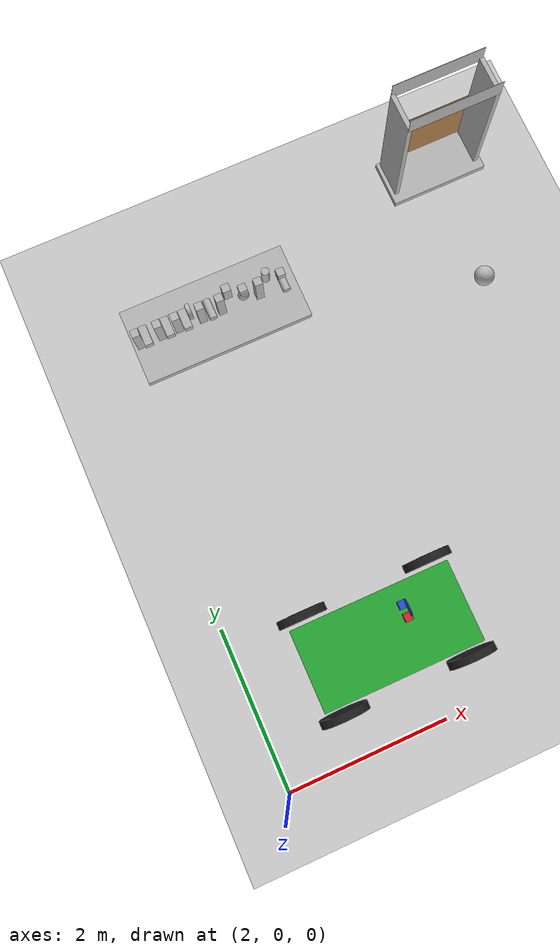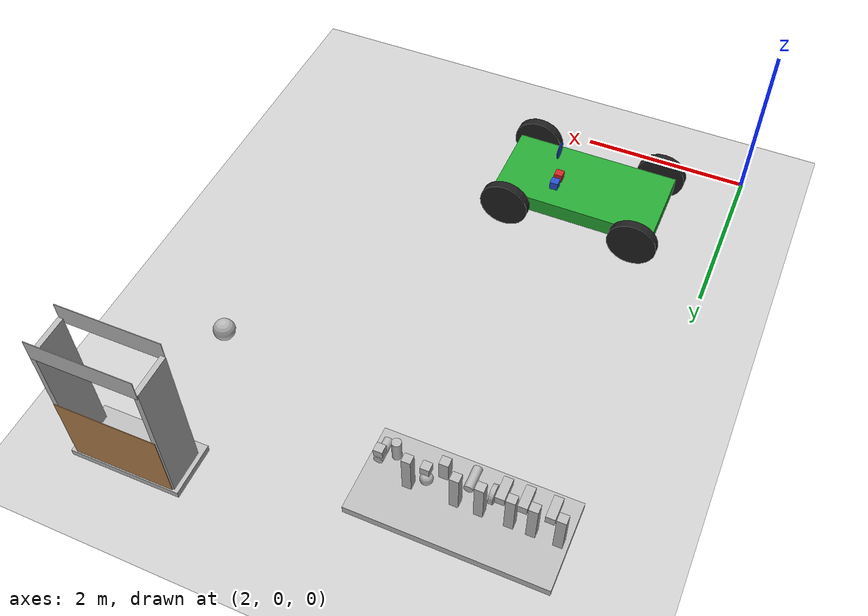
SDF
<sdf version="1.6">
 <world name="default">
  <model name="ground_plane">
   <static>1</static>
   <link name="link">
    <collision name="collision">
     <geometry><plane><normal>0 0 1</normal><size>100 100</size></plane></geometry>
     <surface>
      <contact><collide_bitmask>65535</collide_bitmask></contact>
      <friction><ode><mu>100</mu><mu2>50</mu2></ode></friction>
     </surface>
    </collision>
    <visual name="visual">
     <cast_shadows>0</cast_shadows>
     <geometry><plane><normal>0 0 1</normal><size>100 100</size></plane></geometry>
     <material>
      <script><uri>file://media/materials/scripts/gazebo.material</uri><name>Gazebo/Grey</name></script>
     </material>
    </visual>
   </link>
  </model>
  <model name="demo_joint_types">
   <link name="heavy_base">
    <pose>0 0 0.05 0 -0 0</pose>
    <inertial>
     <mass>100</mass>
     <inertia><ixx>8.4167</ixx><ixy>0</ixy><ixz>0</ixz><iyy>40.417</iyy><iyz>0</iyz><izz>48.667</izz></inertia>
    </inertial>
    <collision name="heavy_base_collision"><geometry><box><size>2.2 1 0.1</size></box></geometry></collision>
    <visual name="heavy_base_visual">
     <geometry><box><size>2.2 1 0.1</size></box></geometry>
     <material>
      <script>
       <uri>model://demo_joint_types/materials/scripts</uri>
       <uri>model://demo_joint_types/materials/textures</uri>
       <name>demo_joint_types/legend</name>
      </script>
     </material>
    </visual>
   </link>
   <link name="revolute_base">
    <pose>-0.72 0 0.35 0 -0 0</pose>
    <inertial>
     <inertia>
      <ixx>0.021667</ixx>
      <ixy>0</ixy>
      <ixz>0</ixz>
      <iyy>0.021667</iyy>
      <iyz>0</iyz>
      <izz>0.0016667</izz>
     </inertia>
     <mass>1</mass>
    </inertial>
    <collision name="revolute_base_collision"><geometry><box><size>0.1 0.1 0.5</size></box></geometry></collision>
    <visual name="revolute_base_visual">
     <geometry><box><size>0.1 0.1 0.5</size></box></geometry>
     <material>
      <script>
       <uri>model://demo_joint_types/materials/scripts</uri>
       <uri>model://demo_joint_types/materials/textures</uri>
       <name>demo_joint_types/parent</name>
      </script>
     </material>
    </visual>
   </link>
   <joint name="revolute_base_to_heavy_base" type="fixed">
    <parent>heavy_base</parent>
    <child>revolute_base</child>
   </joint>
   <link name="revolute_arm">
    <pose>-0.61 -0.075 0.55 0 -0 0</pose>
    <inertial>
     <inertia>
      <ixx>0.0060417</ixx>
      <ixy>0</ixy>
      <ixz>0</ixz>
      <iyy>0.0016667</iyy>
      <iyz>0</iyz>
      <izz>0.0060417</izz>
     </inertia>
     <mass>1</mass>
    </inertial>
    <collision name="revolute_arm_collision"><geometry><box><size>0.1 0.25 0.1</size></box></geometry></collision>
    <visual name="revolute_arm_visual">
     <geometry><box><size>0.1 0.25 0.1</size></box></geometry>
     <material>
      <script>
       <uri>model://demo_joint_types/materials/scripts</uri>
       <uri>model://demo_joint_types/materials/textures</uri>
       <name>demo_joint_types/child</name>
      </script>
     </material>
    </visual>
   </link>
   <joint name="revolute_demo" type="revolute">
    <parent>revolute_base</parent>
    <child>revolute_arm</child>
    <axis>
     <xyz>1 0 0</xyz>
     <use_parent_model_frame>0</use_parent_model_frame>
     <limit><lower>-1e+16</lower><upper>1e+16</upper></limit>
     <dynamics><spring_reference>0</spring_reference><spring_stiffness>0</spring_stiffness></dynamics>
    </axis>
    <pose>0 0.075 0 0 -0 0</pose>
   </joint>
   <link name="gearbox_base">
    <pose>-0.49 0 0.35 0 -0 0</pose>
    <inertial>
     <inertia>
      <ixx>0.021667</ixx>
      <ixy>0</ixy>
      <ixz>0</ixz>
      <iyy>0.021667</iyy>
      <iyz>0</iyz>
      <izz>0.0016667</izz>
     </inertia>
     <mass>1</mass>
    </inertial>
    <collision name="gearbox_base_collision"><geometry><box><size>0.1 0.1 0.5</size></box></geometry></collision>
    <visual name="gearbox_base_visual">
     <geometry><box><size>0.1 0.1 0.5</size></box></geometry>
     <material>
      <script>
       <uri>model://demo_joint_types/materials/scripts</uri>
       <uri>model://demo_joint_types/materials/textures</uri>
       <name>demo_joint_types/reference</name>
      </script>
     </material>
    </visual>
   </link>
   <joint name="gearbox_base_to_heavy_base" type="fixed">
    <parent>heavy_base</parent>
    <child>gearbox_base</child>
   </joint>
   <link name="gearbox_input">
    <pose>-0.38 -0.075 0.55 0 -0 0</pose>
    <inertial>
     <inertia>
      <ixx>0.0060417</ixx>
      <ixy>0</ixy>
      <ixz>0</ixz>
      <iyy>0.0016667</iyy>
      <iyz>0</iyz>
      <izz>0.0060417</izz>
     </inertia>
     <mass>1</mass>
    </inertial>
    <collision name="gearbox_input_collision">
     <geometry><box><size>0.1 0.25 0.1</size></box></geometry>
    </collision>
    <visual name="gearbox_input_visual">
     <geometry><box><size>0.1 0.25 0.1</size></box></geometry>
     <material>
      <script>
       <uri>model://demo_joint_types/materials/scripts</uri>
       <uri>model://demo_joint_types/materials/textures</uri>
       <name>demo_joint_types/parent</name>
      </script>
     </material>
    </visual>
   </link>
   <link name="gearbox_output">
    <gravity>0</gravity>
    <pose>-0.3 0 0.55 3.14159 1.57079 3.14159</pose>
    <inertial>
     <mass>0.1</mass>
     <inertia>
      <ixx>0.00027083</ixx>
      <ixy>0</ixy>
      <ixz>0</ixz>
      <iyy>0.00027083</iyy>
      <iyz>0</iyz>
      <izz>0.0005</izz>
     </inertia>
    </inertial>
    <collision name="gearbox_output_collision">
     <geometry><cylinder><radius>0.1</radius><length>0.05</length></cylinder></geometry>
    </collision>
    <visual name="gearbox_output_visual">
     <geometry><cylinder><radius>0.1</radius><length>0.05</length></cylinder></geometry>
     <material>
      <script>
       <uri>model://demo_joint_types/materials/scripts</uri>
       <uri>model://demo_joint_types/materials/textures</uri>
       <name>demo_joint_types/child</name>
      </script>
     </material>
    </visual>
   </link>
   <joint name="gearbox_input_joint" type="revolute">
    <parent>gearbox_base</parent>
    <child>gearbox_input</child>
    <axis>
     <xyz>1 0 0</xyz>
     <use_parent_model_frame>0</use_parent_model_frame>
     <limit><lower>-1e+16</lower><upper>1e+16</upper></limit>
     <dynamics><spring_reference>0</spring_reference><spring_stiffness>0</spring_stiffness></dynamics>
    </axis>
    <pose>0 0.075 0 0 -0 0</pose>
   </joint>
   <joint name="gearbox_output_joint" type="revolute">
    <parent>gearbox_base</parent>
    <child>gearbox_output</child>
    <axis>
     <xyz>0 0 1</xyz>
     <use_parent_model_frame>0</use_parent_model_frame>
     <limit><lower>-1e+16</lower><upper>1e+16</upper></limit>
     <dynamics><spring_reference>0</spring_reference><spring_stiffness>0</spring_stiffness></dynamics>
    </axis>
   </joint>
   <joint name="gearbox_demo" type="gearbox">
    <parent>gearbox_input</parent>
    <child>gearbox_output</child>
    <gearbox_reference_body>gearbox_base</gearbox_reference_body>
    <gearbox_ratio>5</gearbox_ratio>
    <axis>
     <xyz>0 0 1</xyz>
     <use_parent_model_frame>0</use_parent_model_frame>
     <limit><lower>-1e+16</lower><upper>1e+16</upper></limit>
     <dynamics><spring_reference>0</spring_reference><spring_stiffness>0</spring_stiffness></dynamics>
    </axis>
    <axis2>
     <xyz>0 0 1</xyz>
     <use_parent_model_frame>0</use_parent_model_frame>
     <dynamics><spring_reference>0</spring_reference><spring_stiffness>0</spring_stiffness></dynamics>
    </axis2>
   </joint>
   <link name="revolute2_base">
    <pose>-0.17 0 0.35 0 -0 0</pose>
    <inertial>
     <inertia>
      <ixx>0.021667</ixx>
      <ixy>0</ixy>
      <ixz>0</ixz>
      <iyy>0.021667</iyy>
      <iyz>0</iyz>
      <izz>0.0016667</izz>
     </inertia>
     <mass>1</mass>
    </inertial>
    <collision name="revolute2_base_collision">
     <geometry><box><size>0.1 0.1 0.5</size></box></geometry>
    </collision>
    <visual name="revolute2_base_visual">
     <geometry><box><size>0.1 0.1 0.5</size></box></geometry>
     <material>
      <script>
       <uri>model://demo_joint_types/materials/scripts</uri>
       <uri>model://demo_joint_types/materials/textures</uri>
       <name>demo_joint_types/parent</name>
      </script>
     </material>
    </visual>
   </link>
   <joint name="revolute2_base_to_heavy_base" type="fixed">
    <parent>heavy_base</parent>
    <child>revolute2_base</child>
   </joint>
   <link name="revolute2_arm">
    <pose>-0.06 -0.075 0.55 1.5708 -0 0</pose>
    <inertial>
     <inertia>
      <ixx>0.0058333</ixx>
      <ixy>0</ixy>
      <ixz>0</ixz>
      <iyy>0.0058333</iyy>
      <iyz>0</iyz>
      <izz>0.00125</izz>
     </inertia>
     <pose>-0.1 -0.1 0.1 0 -0 0</pose>
     <mass>1</mass>
    </inertial>
    <collision name="revolute2_arm_collision">
     <geometry><cylinder><radius>0.05</radius><length>0.25</length></cylinder></geometry>
    </collision>
    <visual name="revolute2_arm_visual">
     <geometry><cylinder><radius>0.05</radius><length>0.25</length></cylinder></geometry>
     <material>
      <script>
       <uri>model://demo_joint_types/materials/scripts</uri>
       <uri>model://demo_joint_types/materials/textures</uri>
       <name>demo_joint_types/child</name>
      </script>
     </material>
    </visual>
   </link>
   <joint name="revolute2_demo" type="revolute2">
    <parent>revolute2_base</parent>
    <child>revolute2_arm</child>
    <axis>
     <xyz>1 0 0</xyz>
     <use_parent_model_frame>0</use_parent_model_frame>
     <limit><lower>-1e+16</lower><upper>1e+16</upper></limit>
     <dynamics><spring_reference>0</spring_reference><spring_stiffness>0</spring_stiffness></dynamics>
    </axis>
    <axis2>
     <xyz>0 1 0</xyz>
     <use_parent_model_frame>0</use_parent_model_frame>
     <dynamics><spring_reference>0</spring_reference><spring_stiffness>0</spring_stiffness></dynamics>
    </axis2>
    <pose>0 0 -0.075 0 -0 0</pose>
   </joint>
   <link name="prismatic_base">
    <pose>0.09 0 0.35 0 -0 0</pose>
    <inertial>
     <inertia>
      <ixx>0.021667</ixx>
      <ixy>0</ixy>
      <ixz>0</ixz>
      <iyy>0.021667</iyy>
      <iyz>0</iyz>
      <izz>0.0016667</izz>
     </inertia>
     <mass>1</mass>
    </inertial>
    <collision name="prismatic_base_collision">
     <geometry><box><size>0.1 0.1 0.5</size></box></geometry>
    </collision>
    <visual name="prismatic_base_visual">
     <geometry><box><size>0.1 0.1 0.5</size></box></geometry>
     <material>
      <script>
       <uri>model://demo_joint_types/materials/scripts</uri>
       <uri>model://demo_joint_types/materials/textures</uri>
       <name>demo_joint_types/parent</name>
      </script>
     </material>
    </visual>
   </link>
   <joint name="prismatic_base_to_heavy_base" type="fixed">
    <parent>heavy_base</parent>
    <child>prismatic_base</child>
   </joint>
   <link name="prismatic_slide">
    <pose>0.2 0 0.7 0 -0 0</pose>
    <inertial>
     <inertia>
      <ixx>0.0060417</ixx>
      <ixy>0</ixy>
      <ixz>0</ixz>
      <iyy>0.0060417</iyy>
      <iyz>0</iyz>
      <izz>0.0016667</izz>
     </inertia>
     <mass>1</mass>
    </inertial>
    <collision name="prismatic_slide_collision">
     <geometry><box><size>0.1 0.1 0.25</size></box></geometry>
    </collision>
    <visual name="prismatic_slide_visual">
     <geometry><box><size>0.1 0.1 0.25</size></box></geometry>
     <material>
      <script>
       <uri>model://demo_joint_types/materials/scripts</uri>
       <uri>model://demo_joint_types/materials/textures</uri>
       <name>demo_joint_types/child</name>
      </script>
     </material>
    </visual>
   </link>
   <joint name="prismatic_demo" type="prismatic">
    <parent>prismatic_base</parent>
    <child>prismatic_slide</child>
    <axis>
     <xyz>0 0 1</xyz>
     <limit><lower>-0.25</lower><upper>0.25</upper></limit>
     <dynamics><spring_stiffness>100</spring_stiffness><spring_reference>0</spring_reference></dynamics>
     <use_parent_model_frame>0</use_parent_model_frame>
    </axis>
   </joint>
   <link name="ball_socket">
    <pose>0.4 0 0.55 0 -0 0</pose>
    <inertial>
     <inertia>
      <ixx>0.0016667</ixx>
      <ixy>0</ixy>
      <ixz>0</ixz>
      <iyy>0.0016667</iyy>
      <iyz>0</iyz>
      <izz>0.0016667</izz>
     </inertia>
     <mass>1</mass>
    </inertial>
    <collision name="ball_socket_collision"><geometry><box><size>0.1 0.1 0.1</size></box></geometry></collision>
    <visual name="ball_socket_visual">
     <geometry><box><size>0.1 0.1 0.1</size></box></geometry>
     <material>
      <script>
       <uri>model://demo_joint_types/materials/scripts</uri>
       <uri>model://demo_joint_types/materials/textures</uri>
       <name>demo_joint_types/parent</name>
      </script>
     </material>
    </visual>
   </link>
   <joint name="ball_socket_to_heavy_base" type="fixed">
    <parent>heavy_base</parent>
    <child>ball_socket</child>
   </joint>
   <link name="ball_ball">
    <pose>0.4 0 0.35 0 -0 0</pose>
    <inertial>
     <inertia>
      <ixx>0.00196</ixx>
      <ixy>0.001</ixy>
      <ixz>0.001</ixz>
      <iyy>0.00196</iyy>
      <iyz>0.001</iyz>
      <izz>0.00196</izz>
     </inertia>
     <pose>0.1 -0.1 0.1 0 -0 0</pose>
     <mass>1</mass>
    </inertial>
    <collision name="ball_ball_collision"><geometry><sphere><radius>0.07</radius></sphere></geometry></collision>
    <visual name="ball_ball_visual">
     <geometry><sphere><radius>0.07</radius></sphere></geometry>
     <material>
      <script>
       <uri>model://demo_joint_types/materials/scripts</uri>
       <uri>model://demo_joint_types/materials/textures</uri>
       <name>demo_joint_types/child</name>
      </script>
     </material>
    </visual>
   </link>
   <joint name="ball_demo" type="ball"><parent>ball_socket</parent><child>ball_ball</child></joint>
   <link name="screw_base">
    <pose>0.6 0 0.35 0 -0 0</pose>
    <inertial>
     <inertia>
      <ixx>0.021667</ixx>
      <ixy>0</ixy>
      <ixz>0</ixz>
      <iyy>0.021667</iyy>
      <iyz>0</iyz>
      <izz>0.0016667</izz>
     </inertia>
     <mass>1</mass>
    </inertial>
    <collision name="screw_base_collision"><geometry><box><size>0.1 0.1 0.5</size></box></geometry></collision>
    <visual name="screw_base_visual">
     <geometry><box><size>0.1 0.1 0.5</size></box></geometry>
     <material>
      <script>
       <uri>model://demo_joint_types/materials/scripts</uri>
       <uri>model://demo_joint_types/materials/textures</uri>
       <name>demo_joint_types/parent</name>
      </script>
     </material>
    </visual>
   </link>
   <joint name="screw_base_to_heavy_base" type="fixed">
    <parent>heavy_base</parent>
    <child>screw_base</child>
   </joint>
   <link name="screw_thread">
    <pose>0.71 0 0.7 0 -0 0</pose>
    <inertial>
     <inertia>
      <ixx>0.0058333</ixx>
      <ixy>0</ixy>
      <ixz>0</ixz>
      <iyy>0.0058333</iyy>
      <iyz>0</iyz>
      <izz>0.00125</izz>
     </inertia>
     <mass>1</mass>
    </inertial>
    <collision name="screw_thread_collision">
     <geometry><cylinder><radius>0.05</radius><length>0.25</length></cylinder></geometry>
    </collision>
    <visual name="screw_thread_visual">
     <geometry><cylinder><radius>0.05</radius><length>0.25</length></cylinder></geometry>
     <material>
      <script>
       <uri>model://demo_joint_types/materials/scripts</uri>
       <uri>model://demo_joint_types/materials/textures</uri>
       <name>demo_joint_types/child</name>
      </script>
     </material>
    </visual>
   </link>
   <joint name="screw_thread" type="screw">
    <parent>screw_base</parent>
    <child>screw_thread</child>
    <thread_pitch>20</thread_pitch>
    <axis>
     <xyz>0 0 1</xyz>
     <dynamics><spring_stiffness>0.2</spring_stiffness><spring_reference>0</spring_reference></dynamics>
     <use_parent_model_frame>0</use_parent_model_frame>
     <limit><lower>-1e+16</lower><upper>1e+16</upper></limit>
    </axis>
   </joint>
   <link name="universal_base">
    <pose>0.9 0 0.55 0 -0 0</pose>
    <inertial>
     <inertia>
      <ixx>0.0016667</ixx>
      <ixy>0</ixy>
      <ixz>0</ixz>
      <iyy>0.0016667</iyy>
      <iyz>0</iyz>
      <izz>0.0016667</izz>
     </inertia>
     <mass>1</mass>
    </inertial>
    <collision name="universal_base_collision">
     <geometry><box><size>0.1 0.1 0.1</size></box></geometry>
    </collision>
    <visual name="universal_base_visual">
     <geometry><box><size>0.1 0.1 0.1</size></box></geometry>
     <material>
      <script>
       <uri>model://demo_joint_types/materials/scripts</uri>
       <uri>model://demo_joint_types/materials/textures</uri>
       <name>demo_joint_types/parent</name>
      </script>
     </material>
    </visual>
   </link>
   <joint name="universal_base_to_heavy_base" type="fixed">
    <parent>heavy_base</parent>
    <child>universal_base</child>
   </joint>
   <link name="universal_shaft">
    <pose>0.9 -0.075 0.44 1.5708 -0 0</pose>
    <inertial>
     <inertia>
      <ixx>0.0058333</ixx>
      <ixy>0</ixy>
      <ixz>0</ixz>
      <iyy>0.0058333</iyy>
      <iyz>0</iyz>
      <izz>0.00125</izz>
     </inertia>
     <pose>-0.02 0.02 0 0 -0 0</pose>
     <mass>1</mass>
    </inertial>
    <collision name="universal_shaft_collision">
     <geometry><cylinder><radius>0.05</radius><length>0.25</length></cylinder></geometry>
    </collision>
    <visual name="universal_shaft_visual">
     <geometry><cylinder><radius>0.05</radius><length>0.25</length></cylinder></geometry>
     <material>
      <script>
       <uri>model://demo_joint_types/materials/scripts</uri>
       <uri>model://demo_joint_types/materials/textures</uri>
       <name>demo_joint_types/child</name>
      </script>
     </material>
    </visual>
   </link>
   <joint name="universal_demo" type="universal">
    <parent>universal_base</parent>
    <child>universal_shaft</child>
    <pose>0 0 -0.075 0 -0 0</pose>
   </joint>
   <link name="fixed_base">
    <pose>-1 0 0.35 0 -0 0</pose>
    <inertial>
     <inertia>
      <ixx>0.021667</ixx>
      <ixy>0</ixy>
      <ixz>0</ixz>
      <iyy>0.021667</iyy>
      <iyz>0</iyz>
      <izz>0.0016667</izz>
     </inertia>
     <mass>1</mass>
    </inertial>
    <collision name="fixed_base_collision"><geometry><box><size>0.1 0.1 0.5</size></box></geometry></collision>
    <visual name="fixed_base_visual">
     <geometry><box><size>0.1 0.1 0.5</size></box></geometry>
     <material>
      <script>
       <uri>model://demo_joint_types/materials/scripts</uri>
       <uri>model://demo_joint_types/materials/textures</uri>
       <name>demo_joint_types/parent</name>
      </script>
     </material>
    </visual>
   </link>
   <link name="fixed_arm">
    <pose>-0.89 -0.075 0.55 0 -0 0</pose>
    <inertial>
     <inertia>
      <ixx>0.0060417</ixx>
      <ixy>0</ixy>
      <ixz>0</ixz>
      <iyy>0.0016667</iyy>
      <iyz>0</iyz>
      <izz>0.0060417</izz>
     </inertia>
     <mass>1</mass>
    </inertial>
    <collision name="fixed_arm_collision"><geometry><box><size>0.1 0.25 0.1</size></box></geometry></collision>
    <visual name="fixed_arm_visual">
     <geometry><box><size>0.1 0.25 0.1</size></box></geometry>
     <material>
      <script>
       <uri>model://demo_joint_types/materials/scripts</uri>
       <uri>model://demo_joint_types/materials/textures</uri>
       <name>demo_joint_types/child</name>
      </script>
     </material>
    </visual>
   </link>
   <joint name="fixed_base_to_heavy_base" type="fixed">
    <parent>heavy_base</parent>
    <child>fixed_base</child>
   </joint>
   <joint name="fixed_demo" type="fixed"><parent>fixed_base</parent><child>fixed_arm</child></joint>
   <pose>3.45656 5.59394 0.009985 0 -1.4e-05 1.2e-05</pose>
  </model>
  <model name="frc2016_drawbridge">
   <link name="base">
    <inertial>
     <mass>10</mass>
     <pose>0 0 1 0 -0 0</pose>
     <inertia><ixx>3.64907</ixx><ixy>0</ixy><ixz>0</ixz><iyy>4.67075</iyy><iyz>0</iyz><izz>1.66649</izz></inertia>
    </inertial>
    <visual name="platform">
     <pose>0 0 0.0425 0 -0 0</pose>
     <geometry><box><size>1.27 0.5969 0.085</size></box></geometry>
    </visual>
    <collision name="platform">
     <pose>0 0 0.0425 0 -0 0</pose>
     <geometry><box><size>1.27 0.5969 0.085</size></box></geometry>
    </collision>
    <visual name="right_wall">
     <pose>0.55879 0.04444 0.889 0 -0 0</pose>
     <geometry><box><size>0.05715 0.45698 1.77165</size></box></geometry>
    </visual>
    <collision name="right_wall">
     <pose>0.55879 0.04444 0.889 0 -0 0</pose>
     <geometry><box><size>0.05715 0.45698 1.77165</size></box></geometry>
    </collision>
    <visual name="left_wall">
     <pose>-0.55879 0.04444 0.889 0 -0 0</pose>
     <geometry><box><size>0.05715 0.45698 1.77165</size></box></geometry>
    </visual>
    <collision name="left_wall">
     <pose>-0.55879 0.04444 0.889 0 -0 0</pose>
     <geometry><box><size>0.05715 0.45698 1.77165</size></box></geometry>
    </collision>
    <visual name="front_upper_wall">
     <pose>0 0.27611 1.84286 0 -0 0</pose>
     <geometry><box><size>1.1557 0.006347 0.254</size></box></geometry>
    </visual>
    <collision name="front_upper_wall">
     <pose>0 0.27611 1.84286 0 -0 0</pose>
     <geometry><box><size>1.1557 0.006347 0.254</size></box></geometry>
    </collision>
    <visual name="back_upper_wall">
     <pose>0 -0.18722 1.84286 0 -0 0</pose>
     <geometry><box><size>1.1557 0.006347 0.254</size></box></geometry>
    </visual>
    <collision name="back_upper_wall">
     <pose>0 -0.18722 1.84286 0 -0 0</pose>
     <geometry><box><size>1.1557 0.006347 0.254</size></box></geometry>
    </collision>
   </link>
   <link name="bridge">
    <pose>0 0.28245 0.50577 0 -0 0</pose>
    <inertial>
     <mass>2</mass>
     <pose>0 -0.28245 -0.50577 0 -0 0</pose>
     <inertia>
      <ixx>0.139361</ixx>
      <ixy>0</ixy>
      <ixz>0</ixz>
      <iyy>0.357088</iyy>
      <iyz>0</iyz>
      <izz>0.217741</izz>
     </inertia>
    </inertial>
    <visual name="visual">
     <geometry><box><size>1.14298 0.006347 0.9144</size></box></geometry>
     <material><script><name>Gazebo/WoodFloor</name><uri>__default__</uri></script></material>
    </visual>
    <collision name="collision"><geometry><box><size>1.14298 0.006347 0.9144</size></box></geometry></collision>
   </link>
   <joint name="bridge_joint" type="revolute">
    <pose>0 0 -0.4172 0 -0 0</pose>
    <parent>base</parent>
    <child>bridge</child>
    <axis>
     <xyz>1 0 0</xyz>
     <limit><lower>-2</lower><upper>0</upper></limit>
     <use_parent_model_frame>0</use_parent_model_frame>
     <dynamics><spring_reference>0</spring_reference><spring_stiffness>0</spring_stiffness></dynamics>
    </axis>
   </joint>
   <pose>6.77357 6.31803 0.010001 1e-06 -1e-06 0.006611</pose>
  </model>
  <model name="frc2016_ball">
   <pose>6.74209 4.66906 0.136607 0 -0 0</pose>
   <link name="link">
    <inertial>
     <mass>0.213</mass>
     <inertia>
      <ixx>0.00322667</ixx>
      <ixy>0</ixy>
      <ixz>0</ixz>
      <iyy>0.00322667</iyy>
      <iyz>0</iyz>
      <izz>0.00322667</izz>
     </inertia>
    </inertial>
    <visual name="visual"><geometry><sphere><radius>0.127</radius></sphere></geometry></visual>
    <collision name="collision">
     <geometry><sphere><radius>0.127</radius></sphere></geometry>
     <surface>
      <bounce><restitution_coefficient>0.15937</restitution_coefficient><threshold>0</threshold></bounce>
      <contact><ode><max_vel>100</max_vel><min_depth>0.001</min_depth></ode></contact>
     </surface>
    </collision>
   </link>
  </model>
  <model name="car">
   <link name="chassis">
    <pose>0 0 0.3 0 -0 0</pose>
    <collision name="collision"><geometry><box><size>2 1 0.2</size></box></geometry></collision>
    <visual name="visual">
     <geometry><box><size>2 1 0.2</size></box></geometry>
     <material>
      <script><uri>file://media/materials/scripts/gazebo.material</uri><name>Gazebo/Green</name></script>
     </material>
    </visual>
    <inertial>
     <inertia><ixx>1</ixx><ixy>0</ixy><ixz>0</ixz><iyy>1</iyy><iyz>0</iyz><izz>1</izz></inertia>
     <mass>1</mass>
    </inertial>
   </link>
   <link name="front_left_wheel">
    <pose>0.8 0.6 0.3 -0 1.5707 1.5707</pose>
    <collision name="collision">
     <geometry><cylinder><radius>0.3</radius><length>0.1</length></cylinder></geometry>
    </collision>
    <visual name="visual">
     <geometry><cylinder><radius>0.3</radius><length>0.1</length></cylinder></geometry>
     <material>
      <script><uri>file://media/materials/scripts/gazebo.material</uri><name>Gazebo/Black</name></script>
     </material>
    </visual>
    <inertial>
     <inertia><ixx>1</ixx><ixy>0</ixy><ixz>0</ixz><iyy>1</iyy><iyz>0</iyz><izz>1</izz></inertia>
     <mass>1</mass>
    </inertial>
   </link>
   <link name="front_right_wheel">
    <pose>0.8 -0.6 0.3 -0 1.5707 1.5707</pose>
    <collision name="collision">
     <geometry><cylinder><radius>0.3</radius><length>0.1</length></cylinder></geometry>
    </collision>
    <visual name="visual">
     <geometry><cylinder><radius>0.3</radius><length>0.1</length></cylinder></geometry>
     <material>
      <script><uri>file://media/materials/scripts/gazebo.material</uri><name>Gazebo/Black</name></script>
     </material>
    </visual>
    <inertial>
     <inertia><ixx>1</ixx><ixy>0</ixy><ixz>0</ixz><iyy>1</iyy><iyz>0</iyz><izz>1</izz></inertia>
     <mass>1</mass>
    </inertial>
   </link>
   <link name="back_right_wheel">
    <pose>-0.8 -0.6 0.3 -0 1.5707 1.5707</pose>
    <collision name="collision">
     <geometry><cylinder><radius>0.3</radius><length>0.1</length></cylinder></geometry>
    </collision>
    <visual name="visual">
     <geometry><cylinder><radius>0.3</radius><length>0.1</length></cylinder></geometry>
     <material>
      <script><uri>file://media/materials/scripts/gazebo.material</uri><name>Gazebo/Black</name></script>
     </material>
    </visual>
    <inertial>
     <inertia><ixx>1</ixx><ixy>0</ixy><ixz>0</ixz><iyy>1</iyy><iyz>0</iyz><izz>1</izz></inertia>
     <mass>1</mass>
    </inertial>
   </link>
   <link name="back_left_wheel">
    <pose>-0.8 0.6 0.3 -0 1.5707 1.5707</pose>
    <collision name="collision">
     <geometry><cylinder><radius>0.3</radius><length>0.1</length></cylinder></geometry>
    </collision>
    <visual name="visual">
     <geometry><cylinder><radius>0.3</radius><length>0.1</length></cylinder></geometry>
     <material>
      <script><uri>file://media/materials/scripts/gazebo.material</uri><name>Gazebo/Black</name></script>
     </material>
    </visual>
    <inertial>
     <inertia><ixx>1</ixx><ixy>0</ixy><ixz>0</ixz><iyy>1</iyy><iyz>0</iyz><izz>1</izz></inertia>
     <mass>1</mass>
    </inertial>
   </link>
   <link name="gas_pedal">
    <pose>0.3 0.1 0.5 0 -0 0</pose>
    <collision name="collision"><geometry><box><size>0.1 0.1 0.1</size></box></geometry></collision>
    <visual name="visual">
     <geometry><box><size>0.1 0.1 0.1</size></box></geometry>
     <material>
      <script><uri>file://media/materials/scripts/gazebo.material</uri><name>Gazebo/Red</name></script>
     </material>
    </visual>
    <inertial>
     <inertia><ixx>1</ixx><ixy>0</ixy><ixz>0</ixz><iyy>1</iyy><iyz>0</iyz><izz>1</izz></inertia>
     <mass>1</mass>
    </inertial>
   </link>
   <link name="brake_pedal">
    <pose>0.3 0.25 0.5 0 -0 0</pose>
    <collision name="collision"><geometry><box><size>0.1 0.1 0.1</size></box></geometry></collision>
    <visual name="visual">
     <geometry><box><size>0.1 0.1 0.1</size></box></geometry>
     <material>
      <script><uri>file://media/materials/scripts/gazebo.material</uri><name>Gazebo/Blue</name></script>
     </material>
    </visual>
    <inertial>
     <inertia><ixx>1</ixx><ixy>0</ixy><ixz>0</ixz><iyy>1</iyy><iyz>0</iyz><izz>1</izz></inertia>
     <mass>1</mass>
    </inertial>
   </link>
   <link name="steering_wheel">
    <pose>0.3 0.2 1 0 1.5707 0</pose>
    <collision name="collision">
     <geometry><cylinder><radius>0.1</radius><length>0.01</length></cylinder></geometry>
    </collision>
    <visual name="visual">
     <geometry><cylinder><radius>0.1</radius><length>0.01</length></cylinder></geometry>
     <material>
      <script><uri>file://media/materials/scripts/gazebo.material</uri><name>Gazebo/Blue</name></script>
     </material>
    </visual>
    <inertial>
     <inertia><ixx>1</ixx><ixy>0</ixy><ixz>0</ixz><iyy>1</iyy><iyz>0</iyz><izz>1</izz></inertia>
     <mass>1</mass>
    </inertial>
   </link>
   <joint name="gas_joint" type="prismatic">
    <parent>chassis</parent>
    <child>gas_pedal</child>
    <axis>
     <xyz>1 0 0</xyz>
     <limit><lower>0</lower><upper>0.2</upper></limit>
     <use_parent_model_frame>1</use_parent_model_frame>
     <dynamics><spring_reference>0</spring_reference><spring_stiffness>0</spring_stiffness></dynamics>
    </axis>
   </joint>
   <joint name="brake_joint" type="prismatic">
    <parent>chassis</parent>
    <child>brake_pedal</child>
    <axis>
     <xyz>1 0 0</xyz>
     <limit><lower>0</lower><upper>0.2</upper></limit>
     <use_parent_model_frame>1</use_parent_model_frame>
     <dynamics><spring_reference>0</spring_reference><spring_stiffness>0</spring_stiffness></dynamics>
    </axis>
   </joint>
   <joint name="steering_joint" type="revolute">
    <parent>chassis</parent>
    <child>steering_wheel</child>
    <axis>
     <xyz>1 0 0</xyz>
     <limit><lower>-7.853</lower><upper>7.853</upper></limit>
     <use_parent_model_frame>1</use_parent_model_frame>
     <dynamics><spring_reference>0</spring_reference><spring_stiffness>0</spring_stiffness></dynamics>
    </axis>
   </joint>
   <joint name="front_left_joint" type="revolute2">
    <parent>chassis</parent>
    <child>front_left_wheel</child>
    <axis>
     <xyz>0 0 1</xyz>
     <limit><lower>8.6956e-06</lower><upper>8.6956e-06</upper></limit>
     <use_parent_model_frame>1</use_parent_model_frame>
     <dynamics><spring_reference>0</spring_reference><spring_stiffness>0</spring_stiffness></dynamics>
    </axis>
    <axis2>
     <xyz>0 1 0</xyz>
     <use_parent_model_frame>1</use_parent_model_frame>
     <dynamics><spring_reference>0</spring_reference><spring_stiffness>0</spring_stiffness></dynamics>
    </axis2>
    <physics><ode><limit><cfm>0</cfm><erp>0.9</erp></limit></ode></physics>
   </joint>
   <joint name="front_right_joint" type="revolute2">
    <parent>chassis</parent>
    <child>front_right_wheel</child>
    <axis>
     <xyz>0 0 1</xyz>
     <limit><lower>8.6956e-06</lower><upper>8.6956e-06</upper></limit>
     <use_parent_model_frame>1</use_parent_model_frame>
     <dynamics><spring_reference>0</spring_reference><spring_stiffness>0</spring_stiffness></dynamics>
    </axis>
    <axis2>
     <xyz>0 1 0</xyz>
     <use_parent_model_frame>1</use_parent_model_frame>
     <dynamics><spring_reference>0</spring_reference><spring_stiffness>0</spring_stiffness></dynamics>
    </axis2>
    <physics><ode><limit><cfm>0</cfm><erp>0.9</erp></limit></ode></physics>
   </joint>
   <joint name="back_right_joint" type="revolute2">
    <parent>chassis</parent>
    <child>back_right_wheel</child>
    <axis>
     <xyz>0 0 1</xyz>
     <limit><lower>0</lower><upper>0</upper></limit>
     <use_parent_model_frame>1</use_parent_model_frame>
     <dynamics><spring_reference>0</spring_reference><spring_stiffness>0</spring_stiffness></dynamics>
    </axis>
    <axis2>
     <xyz>0 1 0</xyz>
     <use_parent_model_frame>1</use_parent_model_frame>
     <dynamics><spring_reference>0</spring_reference><spring_stiffness>0</spring_stiffness></dynamics>
    </axis2>
    <physics><ode><limit><cfm>0</cfm><erp>0.9</erp></limit></ode></physics>
   </joint>
   <joint name="back_left_joint" type="revolute2">
    <parent>chassis</parent>
    <child>back_left_wheel</child>
    <axis>
     <xyz>0 0 1</xyz>
     <limit><lower>0</lower><upper>0</upper></limit>
     <use_parent_model_frame>1</use_parent_model_frame>
     <dynamics><spring_reference>0</spring_reference><spring_stiffness>0</spring_stiffness></dynamics>
    </axis>
    <axis2>
     <xyz>0 1 0</xyz>
     <use_parent_model_frame>1</use_parent_model_frame>
     <dynamics><spring_reference>0</spring_reference><spring_stiffness>0</spring_stiffness></dynamics>
    </axis2>
    <physics><ode><limit><cfm>0</cfm><erp>0.9</erp></limit></ode></physics>
   </joint>
   <plugin name="vehicle" filename="libVehiclePlugin.so">
    <front_left>front_left_joint</front_left>
    <front_right>front_right_joint</front_right>
    <back_left>back_left_joint</back_left>
    <back_right>back_right_joint</back_right>
    <gas>gas_joint</gas>
    <brake>brake_joint</brake>
    <steering>steering_joint</steering>
    <front_power>10</front_power>
    <rear_power>10</rear_power>
    <tire_angle_range>0.5</tire_angle_range>
    <max_speed>10</max_speed>
    <aero_load>0.1</aero_load>
   </plugin>
   <pose>3.73497 1.15599 0.007385 -0.000273 0.000907 2.1e-05</pose>
  </model>
 </world>
</sdf>
